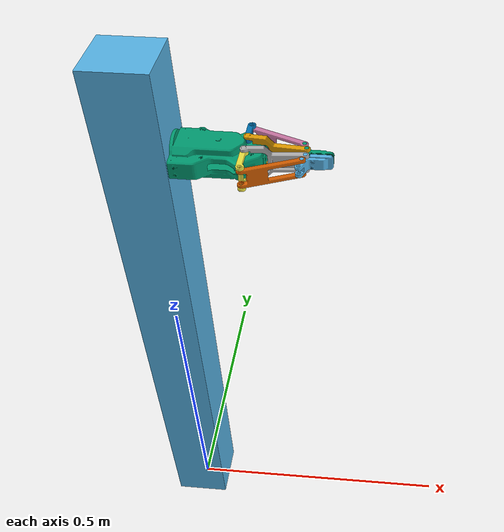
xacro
<?xml version="1.0" ?>

<robot name="dh_robotics_ag145_gripper" xmlns:xacro="http://ros.org/wiki/xacro">
    <xacro:include filename="$(find dh_robotics_ag145_description)/urdf/dh_robotics_ag145_gripper.urdf.xacro" />

    <gazebo>
        <plugin name="gazebo_ros_control" filename="libgazebo_ros_control.so">
            <robotNamespace>/</robotNamespace>
            <legacyModeNS>true</legacyModeNS>
        </plugin>
    </gazebo>

    <link name="world"/>
    <joint name="world_fixed" type="fixed">
        <origin xyz="0 0 0" rpy="0 0 0"/>
        <parent link="world"/>
        <child link="gripper_root_link"/>
    </joint>

    <link name="gripper_root_link">
        <visual>
            <origin xyz="0 0 0.5" rpy="0 0 0"/>
            <geometry>
                <box size="0.1 0.1 1.0"/>
            </geometry>
        </visual>
        <collision>
            <origin xyz="0 0 0.5" rpy="0 0 0"/>
            <geometry>
                <box size="0.1 0.1 1.0"/>
            </geometry>
        </collision>
        <inertial>
            <mass value="1e2" />
            <origin xyz="0.0 0.0 0.0" />
            <inertia ixx = "0.000001" ixy = "0.000000" ixz = "0.000000"
                     iyx = "0.000000" iyy = "0.000001" iyz = "0.000000"
                     izx = "0.000000" izy = "0.000000" izz = "0.000001" />
        </inertial>
    </link>

    <xacro:dh_robotics_ag145_gripper prefix="" parent="gripper_root_link" >
        <origin xyz="0.05 0 0.85" rpy="${pi/2}  0 ${pi/2}"/>
    </xacro:dh_robotics_ag145_gripper>

</robot>

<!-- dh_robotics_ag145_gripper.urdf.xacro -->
<robot name="dh_robotics_ag145_gripper" xmlns:xacro="http://ros.org/wiki/xacro">
    <xacro:include filename="$(find dh_robotics_ag145_description)/urdf/dh_robotics_ag145_gripper.transmission.xacro" />

    <xacro:macro name="dh_robotics_ag145_gripper" params="prefix parent *origin">

        <joint name="${prefix}gripper_base_joint" type="fixed">
            <parent link="${parent}"/>
            <child link="${prefix}gripper_base_link"/>
            <xacro:insert_block name="origin"/>
        </joint>

        <link name="${prefix}gripper_base_link">
            <visual>
                <geometry>
                    <mesh filename="package://dh_robotics_ag145_description/meshes/visual/base_link.STL"  />
                </geometry>
            </visual>
            <collision>
                <geometry>
                    <mesh filename="package://dh_robotics_ag145_description/meshes/visual/base_link.STL"  />
                </geometry>
            </collision>
            <inertial>
                <mass value="0.0244063265095657" />
                <origin xyz="4.22096179276271E-09 -8.66337897962713E-05 0.00351545641909857" />
                <inertia ixx="5.17090412144922E-06"
                         ixy="2.1574281704417E-13"
                         ixz="-1.62385477492139E-13"
                         iyy="1.55299243331649E-05"
                         iyz="-3.38892310365514E-09"
                         izz="2.02963394517234E-05"  />
            </inertial>
        </link>

        <gazebo reference="${prefix}gripper_base_link">
            <implicitSpringDamper>1</implicitSpringDamper>
            <mu1>100000</mu1>
            <mu2>100000</mu2>
            <kp>100000000.0</kp>
            <kd>1.0</kd>
        </gazebo>

        <joint name="${prefix}gripper_finger1_joint" type="revolute">
            <parent link="${prefix}gripper_base_link"/>
            <child link="${prefix}gripper_finger1_knuckle_link"/>
            <axis xyz="0 -1 0"/>
            <origin rpy="0.0 0.0 ${pi}" xyz="-0.016 0 0.10586"/>
            <limit lower="-0.65" upper="0.0" velocity="100.0" effort="1000"/>
        </joint>

        <joint name="${prefix}gripper_finger2_joint" type="revolute">
            <parent link="${prefix}gripper_base_link"/>
            <child link="${prefix}gripper_finger2_knuckle_link"/>
            <axis xyz="0 -1 0"/>
            <origin rpy="0.0 0.0 0.0" xyz="0.016  0 0.10586 "/>
            <limit lower="-3.14" upper="3.14" velocity="100.0" effort="1000"/>
            <mimic joint="${prefix}gripper_finger1_joint"/>
        </joint>

        <link name="${prefix}gripper_finger1_knuckle_link">
            <visual>
                <geometry>
                    <mesh filename="package://dh_robotics_ag145_description/meshes/visual/crank_Link.STL"  />
                </geometry>
            </visual>
            <collision>
                <geometry>
                    <mesh filename="package://dh_robotics_ag145_description/meshes/visual/crank_Link.STL"  />
                </geometry>
            </collision>
            <inertial>
                <mass value="0.0039541" />
                <origin xyz="0.019413 1.0484E-09 -0.0013793" />
                <inertia    ixx="1.1534E-06"
                            ixy="-3.3307E-14"
                            ixz="5.4175E-09"
                            iyy="6.8389E-07"
                            iyz="7.7878E-15"
                            izz="1.7667E-06" />
            </inertial>
        </link>

        <gazebo reference="${prefix}gripper_finger1_knuckle_link">
            <implicitSpringDamper>1</implicitSpringDamper>
            <mu1>100000</mu1>
            <mu2>100000</mu2>
            <kp>100000000.0</kp>
            <kd>1.0</kd>
        </gazebo>

        <link name="${prefix}gripper_finger2_knuckle_link">
            <visual>
                <geometry>
                    <mesh filename="package://dh_robotics_ag145_description/meshes/visual/crank_Link.STL"  />
                </geometry>
            </visual>
            <collision>
                <geometry>
                    <mesh filename="package://dh_robotics_ag145_description/meshes/visual/crank_Link.STL"  />
                </geometry>
            </collision>
            <inertial>
                <mass value="0.0039541" />
                <origin xyz="0.019413 0.00025 -0.0013793" />
                <inertia
                    ixx="1.1534E-06"
                    ixy="-3.3307E-14"
                    ixz="5.4175E-09"
                    iyy="6.8389E-07"
                    iyz="7.7878E-15"
                    izz="1.7667E-06" />
            </inertial>
        </link>

        <gazebo reference="${prefix}gripper_finger2_knuckle_link">
            <implicitSpringDamper>1</implicitSpringDamper>
            <mu1>100000</mu1>
            <mu2>100000</mu2>
            <kp>100000000.0</kp>
            <kd>1.0</kd>
        </gazebo>

        <joint name="${prefix}gripper_finger1_finger_joint" type="continuous">
            <parent link="${prefix}gripper_finger1_knuckle_link"/>
            <child link="${prefix}gripper_finger1_finger_link"/>
            <axis xyz="0 -1 0"/>
            <origin xyz="0.036999 0 -0.00019698" rpy="0 0 0" />
            <limit lower="-3.14" upper="3.14" velocity="100.0" effort="105"/>
            <mimic joint="${prefix}gripper_finger1_joint" multiplier="0.5" offset="0"/>
        </joint>

        <joint name="${prefix}gripper_finger2_finger_joint" type="continuous">
            <parent link="${prefix}gripper_finger2_knuckle_link"/>
            <child link="${prefix}gripper_finger2_finger_link"/>
            <axis xyz="0 -1 0"/>
            <origin xyz="0.036999 0 -0.00019698" rpy="0 0 0" />
            <limit lower="-3.14" upper="3.14" velocity="100.0" effort="105"/>
            <mimic joint="${prefix}gripper_finger1_joint" multiplier="0.5" offset="0"/>
        </joint>

        <link name="${prefix}gripper_finger1_finger_link">
            <visual>
                <geometry>
                    <mesh filename="package://dh_robotics_ag145_description/meshes/visual/rod_Link.STL"  />
                </geometry>
            </visual>
            <collision>
                <geometry>
                    <mesh filename="package://dh_robotics_ag145_description/meshes/visual/rod_Link.STL"  />
                </geometry>
            </collision>
            <inertial>
                <mass value="0.01141" />
                <origin xyz="-0.012522 -9.1789E-09 0.034743" />
                <inertia
                    ixx="7.7273E-06"
                    ixy="5.2238E-14"
                    ixz="2.7021E-06"
                    iyy="7.7164E-06"
                    iyz="2.4255E-13"
                    izz="2.4386E-06" />
            </inertial>
        </link>

        <gazebo reference="${prefix}gripper_finger1_finger_link">
            <implicitSpringDamper>1</implicitSpringDamper>
            <mu1>100000</mu1>
            <mu2>100000</mu2>
            <kp>100000000.0</kp>
            <kd>1.0</kd>
        </gazebo>

        <link name="${prefix}gripper_finger2_finger_link">
            <visual>
                <geometry>
                    <mesh filename="package://dh_robotics_ag145_description/meshes/visual/rod_Link.STL"  />
                </geometry>
            </visual>
            <collision>
                <geometry>
                    <mesh filename="package://dh_robotics_ag145_description/meshes/visual/rod_Link.STL"  />
                </geometry>
            </collision>
            <inertial>
                <mass value="0.01141" />
                <origin xyz="-0.012522 -0.00025001 0.034743" />
                <inertia
                    ixx="7.7273E-06"
                    ixy="5.2238E-14"
                    ixz="2.7021E-06"
                    iyy="7.7164E-06"
                    iyz="2.4255E-13"
                    izz="2.4386E-06" />
            </inertial>
        </link>

        <gazebo reference="${prefix}gripper_finger2_finger_link">
            <implicitSpringDamper>1</implicitSpringDamper>
            <mu1>100000</mu1>
            <mu2>100000</mu2>
            <kp>100000000.0</kp>
            <kd>1.0</kd>
        </gazebo>

        <joint name="${prefix}gripper_finger1_inner_knuckle_joint" type="continuous">
            <parent link="${prefix}gripper_base_link"/>
            <child link="${prefix}gripper_finger1_inner_knuckle_link"/>
            <axis xyz="0 -1 0"/>
            <origin rpy="0.0 0.0 ${pi}" xyz="-0.016 0 0.10586"/>
            <limit lower="-3.14" upper="3.14" velocity="100.0" effort="105"/>
            <mimic joint="${prefix}gripper_finger1_joint" multiplier="1.49"  offset="0"/>
        </joint>

        <joint name="${prefix}gripper_finger2_inner_knuckle_joint" type="continuous">
            <parent link="${prefix}gripper_base_link"/>
            <child link="${prefix}gripper_finger2_inner_knuckle_link"/>
            <axis xyz="0 -1 0"/>
            <origin rpy="0.0 0.0 0.0" xyz="0.016 0 0.10586"/>
            <limit lower="-3.14" upper="3.14" velocity="100.0" effort="105"/>
            <mimic joint="${prefix}gripper_finger1_joint" multiplier="1.49" offset="0"/>
        </joint>

        <link name="${prefix}gripper_finger1_inner_knuckle_link">
            <visual>
                <geometry>
                    <mesh filename="package://dh_robotics_ag145_description/meshes/visual/proximal_phalanx_Link.STL"  />
                </geometry>
            </visual>
            <collision>
                <geometry>
                    <mesh filename="package://dh_robotics_ag145_description/meshes/visual/proximal_phalanx_Link.STL"  />
                </geometry>
            </collision>
            <inertial>
                <mass value="0.017156" />
                <origin xyz="-0.0051218 -8.3333E-10 0.038185" />
                <inertia
                    ixx="1.5431E-05"
                    ixy="3.7731E-14"
                    ixz="1.2687E-06"
                    iyy="1.2149E-05"
                    iyz="-3.4837E-13"
                    izz="3.7944E-06" />
            </inertial>
        </link>

        <gazebo reference="${prefix}gripper_finger1_inner_knuckle_link">
            <implicitSpringDamper>1</implicitSpringDamper>
            <mu1>100000</mu1>
            <mu2>100000</mu2>
            <kp>100000000.0</kp>
            <kd>1.0</kd>
        </gazebo>

        <link name="${prefix}gripper_finger2_inner_knuckle_link">
            <visual>
                <geometry>
                    <mesh filename="package://dh_robotics_ag145_description/meshes/visual/proximal_phalanx_Link.STL"  />
                </geometry>
            </visual>
            <collision>
                <geometry>
                    <mesh filename="package://dh_robotics_ag145_description/meshes/visual/proximal_phalanx_Link.STL"  />
                </geometry>
            </collision>
            <inertial>
                <mass value="0.017156" />
                <origin xyz="-0.0051218 -8.3333E-10 0.038185" />
                <inertia
                    ixx="1.5431E-05"
                    ixy="3.7731E-14"
                    ixz="1.2687E-06"
                    iyy="1.2149E-05"
                    iyz="-3.4837E-13"
                    izz="3.7944E-06" />
            </inertial>
        </link>

        <gazebo reference="${prefix}gripper_finger2_inner_knuckle_link">
            <implicitSpringDamper>1</implicitSpringDamper>
            <mu1>100000</mu1>
            <mu2>100000</mu2>
            <kp>100000000.0</kp>
            <kd>1.0</kd>
        </gazebo>

        <joint name="${prefix}gripper_finger1_finger_tip_joint" type="continuous">
            <parent link="${prefix}gripper_finger1_inner_knuckle_link"/>
            <child link="${prefix}gripper_finger1_finger_tip_link"/>
            <axis xyz="0 1 0"/>
            <origin xyz="-0.0081054 0 0.086119 " rpy="0.0 0.0 0.0"/>
            <limit lower="-3.14" upper="3.14" velocity="100.0" effort="0.1"/>
            <mimic joint="${prefix}gripper_finger1_joint" multiplier="1.49"/>
        </joint>

        <joint name="${prefix}gripper_finger2_finger_tip_joint" type="continuous">
            <parent link="${prefix}gripper_finger2_inner_knuckle_link"/>
            <child link="${prefix}gripper_finger2_finger_tip_link"/>
            <axis xyz="0 1 0"/>
            <origin rpy="0.0 0.0 0.0" xyz="-0.0081054 0 0.086119  "/>
            <limit lower="-3.14" upper="3.14" velocity="100.0" effort="0.1"/>
            <mimic joint="${prefix}gripper_finger1_joint" multiplier="1.49"/>
        </joint>

        <link name="${prefix}gripper_finger1_finger_tip_link">
            <visual>
                <geometry>
                    <mesh filename="package://dh_robotics_ag145_description/meshes/visual/distal_phalanx_Link.STL"  />
                </geometry>
            </visual>
            <collision>
                <geometry>
                    <mesh filename="package://dh_robotics_ag145_description/meshes/visual/distal_phalanx_Link.STL"  />
                </geometry>
            </collision>
            <inertial>
                <mass value="0.012397" />
                <origin xyz="0.0019731 -1.4867E-09 0.010631" />
                <inertia
                    ixx="1.0948E-06"
                    ixy="4.5713E-14"
                    ixz="1.3947E-07"
                    iyy="1.0269E-06"
                    iyz="-5.5222E-15"
                    izz="8.431E-07" />
            </inertial>
        </link>

        <gazebo reference="${prefix}gripper_finger1_finger_tip_link">
            <implicitSpringDamper>1</implicitSpringDamper>
            <mu1>100000</mu1>
            <mu2>100000</mu2>
            <kp>100000000.0</kp>
            <kd>1.0</kd>
        </gazebo>

        <link name="${prefix}gripper_finger2_finger_tip_link">
            <visual>
                <geometry>
                    <mesh filename="package://dh_robotics_ag145_description/meshes/visual/distal_phalanx_Link.STL" />
                </geometry>
            </visual>
            <collision>
                <geometry>
                    <mesh filename="package://dh_robotics_ag145_description/meshes/visual/distal_phalanx_Link.STL" />
                </geometry>
            </collision>
            <inertial>
                <mass value="0.012397" />
                <origin xyz="0.0019731 3.1569E-10 0.010631" />
                <inertia
                    ixx="1.0948E-06"
                    ixy="-9.4676E-15"
                    ixz="1.3947E-07"
                    iyy="1.0269E-06"
                    iyz="1.771E-14"
                    izz="8.431E-07" />
            </inertial>
        </link>

        <gazebo reference="${prefix}gripper_finger2_finger_tip_link">
            <implicitSpringDamper>1</implicitSpringDamper>
            <mu1>100000</mu1>
            <mu2>100000</mu2>
            <kp>100000000.0</kp>
            <kd>1.0</kd>
        </gazebo>

        <xacro:dh_robotics_ag145_gripper_transmission prefix="${prefix}" />

    </xacro:macro>
</robot>
